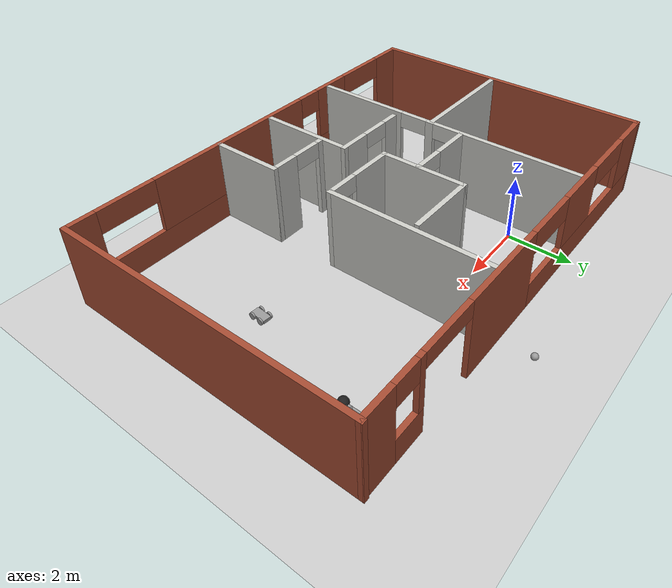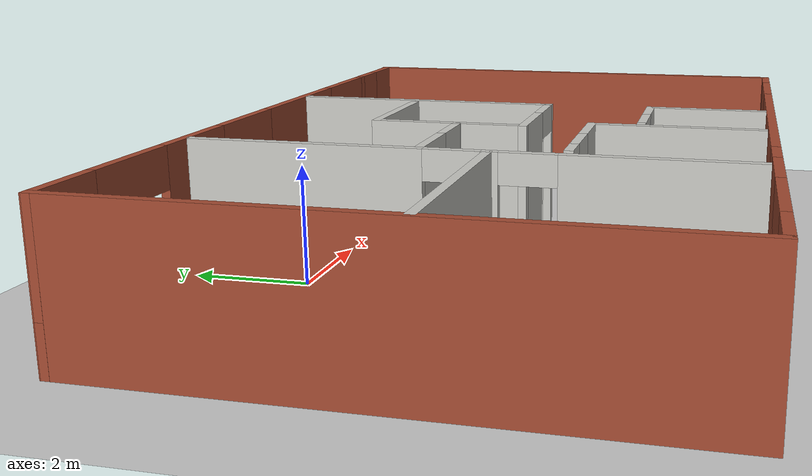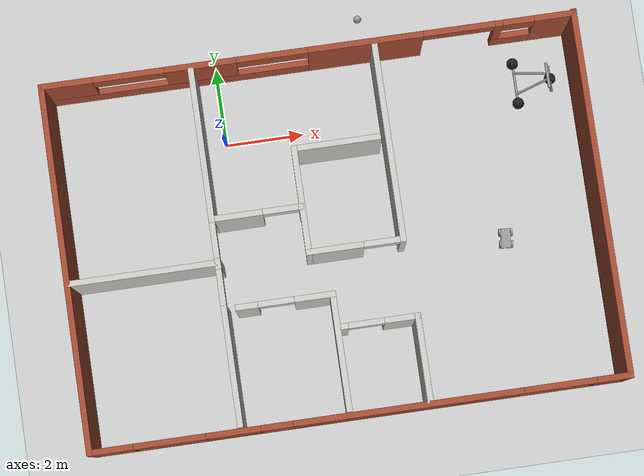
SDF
<sdf version="1.6">
 <world name="default">
  <model name="ground_plane">
   <static>1</static>
   <link name="link">
    <collision name="collision">
     <geometry><plane><normal>0 0 1</normal><size>100 100</size></plane></geometry>
     <surface><friction><ode><mu>100</mu><mu2>50</mu2></ode></friction></surface>
    </collision>
    <visual name="visual">
     <cast_shadows>0</cast_shadows>
     <geometry><plane><normal>0 0 1</normal><size>100 100</size></plane></geometry>
     <material>
      <script><uri>file://media/materials/scripts/gazebo.material</uri><name>Gazebo/Grey</name></script>
     </material>
    </visual>
   </link>
  </model>
  <model name="myhouse">
   <pose>2.39208 -2.83258 0 0 -0 0</pose>
   <link name="Wall_38">
    <collision name="Wall_38_Collision">
     <geometry><box><size>9.28418 0.15 2.5</size></box></geometry>
     <pose>0 0 1.25 0 -0 0</pose>
    </collision>
    <visual name="Wall_38_Visual">
     <pose>0 0 1.25 0 -0 0</pose>
     <geometry><box><size>9.28418 0.15 2.5</size></box></geometry>
     <material>
      <script><uri>file://media/materials/scripts/gazebo.material</uri><name>Gazebo/Bricks</name></script>
      <ambient>0.996078 0.47451 0.0196078 1</ambient>
     </material>
    </visual>
    <pose>-6.69036 -4.9e-05 0 0 0 -1.5708</pose>
   </link>
   <link name="Wall_39">
    <pose>0.000136 -4.56705 0 0 -0 0</pose>
    <visual name="Wall_39_Visual_0">
     <pose>-6.18995 0 1.25 0 -0 0</pose>
     <geometry><box><size>1.1511 0.15 2.5</size></box></geometry>
     <material>
      <script><uri>file://media/materials/scripts/gazebo.material</uri><name>Gazebo/Bricks</name></script>
      <ambient>0.996078 0.47451 0.0196078 1</ambient>
     </material>
    </visual>
    <collision name="Wall_39_Collision_0">
     <geometry><box><size>1.1511 0.15 2.5</size></box></geometry>
     <pose>-6.18995 0 1.25 0 -0 0</pose>
    </collision>
    <visual name="Wall_39_Visual_1">
     <pose>0.575549 0 0.4 0 -0 0</pose>
     <geometry><box><size>12.3799 0.15 0.8</size></box></geometry>
     <material>
      <script><uri>file://media/materials/scripts/gazebo.material</uri><name>Gazebo/Bricks</name></script>
      <ambient>0.996078 0.47451 0.0196078 1</ambient>
     </material>
    </visual>
    <collision name="Wall_39_Collision_1">
     <geometry><box><size>12.3799 0.15 0.8</size></box></geometry>
     <pose>0.575549 0 0.4 0 -0 0</pose>
    </collision>
    <visual name="Wall_39_Visual_2">
     <pose>-3.14182 0 1.65 0 -0 0</pose>
     <geometry><box><size>1.34517 0.15 1.7</size></box></geometry>
     <material>
      <script><uri>file://media/materials/scripts/gazebo.material</uri><name>Gazebo/Bricks</name></script>
      <ambient>0.996078 0.47451 0.0196078 1</ambient>
     </material>
    </visual>
    <collision name="Wall_39_Collision_2">
     <geometry><box><size>1.34517 0.15 1.7</size></box></geometry>
     <pose>-3.14182 0 1.65 0 -0 0</pose>
    </collision>
    <visual name="Wall_39_Visual_3">
     <pose>1.19211 0 1.65 0 -0 0</pose>
     <geometry><box><size>5.72269 0.15 1.7</size></box></geometry>
     <material>
      <script><uri>file://media/materials/scripts/gazebo.material</uri><name>Gazebo/Bricks</name></script>
      <ambient>0.996078 0.47451 0.0196078 1</ambient>
     </material>
    </visual>
    <collision name="Wall_39_Collision_3">
     <geometry><box><size>5.72269 0.15 1.7</size></box></geometry>
     <pose>1.19211 0 1.65 0 -0 0</pose>
    </collision>
    <visual name="Wall_39_Visual_4">
     <pose>6.30948 0 1.65 0 -0 0</pose>
     <geometry><box><size>0.912041 0.15 1.7</size></box></geometry>
     <material>
      <script><uri>file://media/materials/scripts/gazebo.material</uri><name>Gazebo/Bricks</name></script>
      <ambient>0.996078 0.47451 0.0196078 1</ambient>
     </material>
    </visual>
    <collision name="Wall_39_Collision_4">
     <geometry><box><size>0.912041 0.15 1.7</size></box></geometry>
     <pose>6.30948 0 1.65 0 -0 0</pose>
    </collision>
    <visual name="Wall_39_Visual_5">
     <pose>-4.7144 0 2.15 0 -0 0</pose>
     <geometry><box><size>1.8 0.15 0.7</size></box></geometry>
     <material>
      <script><uri>file://media/materials/scripts/gazebo.material</uri><name>Gazebo/Bricks</name></script>
      <ambient>0.996078 0.47451 0.0196078 1</ambient>
     </material>
    </visual>
    <collision name="Wall_39_Collision_5">
     <geometry><box><size>1.8 0.15 0.7</size></box></geometry>
     <pose>-4.7144 0 2.15 0 -0 0</pose>
    </collision>
    <visual name="Wall_39_Visual_6">
     <pose>-2.06923 0 2.15 0 -0 0</pose>
     <geometry><box><size>0.8 0.15 0.7</size></box></geometry>
     <material>
      <script><uri>file://media/materials/scripts/gazebo.material</uri><name>Gazebo/Bricks</name></script>
      <ambient>0.996078 0.47451 0.0196078 1</ambient>
     </material>
    </visual>
    <collision name="Wall_39_Collision_6">
     <geometry><box><size>0.8 0.15 0.7</size></box></geometry>
     <pose>-2.06923 0 2.15 0 -0 0</pose>
    </collision>
    <visual name="Wall_39_Visual_7">
     <pose>4.95346 0 2.15 0 -0 0</pose>
     <geometry><box><size>1.8 0.15 0.7</size></box></geometry>
     <material>
      <script><uri>file://media/materials/scripts/gazebo.material</uri><name>Gazebo/Bricks</name></script>
      <ambient>0.996078 0.47451 0.0196078 1</ambient>
     </material>
    </visual>
    <collision name="Wall_39_Collision_7">
     <geometry><box><size>1.8 0.15 0.7</size></box></geometry>
     <pose>4.95346 0 2.15 0 -0 0</pose>
    </collision>
   </link>
   <link name="Wall_40">
    <collision name="Wall_40_Collision">
     <geometry><box><size>9.28418 0.15 2.5</size></box></geometry>
     <pose>0 0 1.25 0 -0 0</pose>
    </collision>
    <visual name="Wall_40_Visual">
     <pose>0 0 1.25 0 -0 0</pose>
     <geometry><box><size>9.28418 0.15 2.5</size></box></geometry>
     <material>
      <script><uri>file://media/materials/scripts/gazebo.material</uri><name>Gazebo/Bricks</name></script>
      <ambient>0.996078 0.47451 0.0196078 1</ambient>
     </material>
    </visual>
    <pose>6.69014 4.1e-05 0 0 -0 1.57091</pose>
   </link>
   <link name="Wall_41">
    <pose>-0.000364 4.55175 0 0 -0 3.13932</pose>
    <visual name="Wall_41_Visual_0">
     <pose>-6.23299 0 1.25 0 -0 0</pose>
     <geometry><box><size>1.06429 0.15 2.5</size></box></geometry>
     <material>
      <script><uri>file://media/materials/scripts/gazebo.material</uri><name>Gazebo/Bricks</name></script>
      <ambient>0.996078 0.47451 0.0196078 1</ambient>
     </material>
    </visual>
    <collision name="Wall_41_Collision_0">
     <geometry><box><size>1.06429 0.15 2.5</size></box></geometry>
     <pose>-6.23299 0 1.25 0 -0 0</pose>
    </collision>
    <visual name="Wall_41_Visual_1">
     <pose>-1.44735 0 1.25 0 -0 0</pose>
     <geometry><box><size>2.90668 0.15 2.5</size></box></geometry>
     <material>
      <script><uri>file://media/materials/scripts/gazebo.material</uri><name>Gazebo/Bricks</name></script>
      <ambient>0.996078 0.47451 0.0196078 1</ambient>
     </material>
    </visual>
    <collision name="Wall_41_Collision_1">
     <geometry><box><size>2.90668 0.15 2.5</size></box></geometry>
     <pose>-1.44735 0 1.25 0 -0 0</pose>
    </collision>
    <visual name="Wall_41_Visual_2">
     <pose>-5.20076 0 0.4 0 -0 0</pose>
     <geometry><box><size>1.00016 0.15 0.8</size></box></geometry>
     <material>
      <script><uri>file://media/materials/scripts/gazebo.material</uri><name>Gazebo/Bricks</name></script>
      <ambient>0.996078 0.47451 0.0196078 1</ambient>
     </material>
    </visual>
    <collision name="Wall_41_Collision_2">
     <geometry><box><size>1.00016 0.15 0.8</size></box></geometry>
     <pose>-5.20076 0 0.4 0 -0 0</pose>
    </collision>
    <visual name="Wall_41_Visual_3">
     <pose>3.38556 0 0.4 0 -0 0</pose>
     <geometry><box><size>6.75914 0.15 0.8</size></box></geometry>
     <material>
      <script><uri>file://media/materials/scripts/gazebo.material</uri><name>Gazebo/Bricks</name></script>
      <ambient>0.996078 0.47451 0.0196078 1</ambient>
     </material>
    </visual>
    <collision name="Wall_41_Collision_3">
     <geometry><box><size>6.75914 0.15 0.8</size></box></geometry>
     <pose>3.38556 0 0.4 0 -0 0</pose>
    </collision>
    <visual name="Wall_41_Visual_4">
     <pose>-4.80076 0 1.65 0 -0 0</pose>
     <geometry><box><size>0.200157 0.15 1.7</size></box></geometry>
     <material>
      <script><uri>file://media/materials/scripts/gazebo.material</uri><name>Gazebo/Bricks</name></script>
      <ambient>0.996078 0.47451 0.0196078 1</ambient>
     </material>
    </visual>
    <collision name="Wall_41_Collision_4">
     <geometry><box><size>0.200157 0.15 1.7</size></box></geometry>
     <pose>-4.80076 0 1.65 0 -0 0</pose>
    </collision>
    <visual name="Wall_41_Visual_5">
     <pose>-4.80076 0 1.65 0 -0 0</pose>
     <geometry><box><size>0.200157 0.15 1.7</size></box></geometry>
     <material>
      <script><uri>file://media/materials/scripts/gazebo.material</uri><name>Gazebo/Bricks</name></script>
      <ambient>0.996078 0.47451 0.0196078 1</ambient>
     </material>
    </visual>
    <collision name="Wall_41_Collision_5">
     <geometry><box><size>0.200157 0.15 1.7</size></box></geometry>
     <pose>-4.80076 0 1.65 0 -0 0</pose>
    </collision>
    <visual name="Wall_41_Visual_6">
     <pose>2.70554 0 1.65 0 -0 0</pose>
     <geometry><box><size>1.79911 0.15 1.7</size></box></geometry>
     <material>
      <script><uri>file://media/materials/scripts/gazebo.material</uri><name>Gazebo/Bricks</name></script>
      <ambient>0.996078 0.47451 0.0196078 1</ambient>
     </material>
    </visual>
    <collision name="Wall_41_Collision_6">
     <geometry><box><size>1.79911 0.15 1.7</size></box></geometry>
     <pose>2.70554 0 1.65 0 -0 0</pose>
    </collision>
    <visual name="Wall_41_Visual_7">
     <pose>6.08511 0 1.65 0 -0 0</pose>
     <geometry><box><size>1.36003 0.15 1.7</size></box></geometry>
     <material>
      <script><uri>file://media/materials/scripts/gazebo.material</uri><name>Gazebo/Bricks</name></script>
      <ambient>0.996078 0.47451 0.0196078 1</ambient>
     </material>
    </visual>
    <collision name="Wall_41_Collision_7">
     <geometry><box><size>1.36003 0.15 1.7</size></box></geometry>
     <pose>6.08511 0 1.65 0 -0 0</pose>
    </collision>
    <visual name="Wall_41_Visual_8">
     <pose>-5.30084 0 2.15 0 -0 0</pose>
     <geometry><box><size>0.8 0.15 0.7</size></box></geometry>
     <material>
      <script><uri>file://media/materials/scripts/gazebo.material</uri><name>Gazebo/Bricks</name></script>
      <ambient>0.996078 0.47451 0.0196078 1</ambient>
     </material>
    </visual>
    <collision name="Wall_41_Collision_8">
     <geometry><box><size>0.8 0.15 0.7</size></box></geometry>
     <pose>-5.30084 0 2.15 0 -0 0</pose>
    </collision>
    <visual name="Wall_41_Visual_9">
     <pose>0.905991 0 2.15 0 -0 0</pose>
     <geometry><box><size>1.8 0.15 0.7</size></box></geometry>
     <material>
      <script><uri>file://media/materials/scripts/gazebo.material</uri><name>Gazebo/Bricks</name></script>
      <ambient>0.996078 0.47451 0.0196078 1</ambient>
     </material>
    </visual>
    <collision name="Wall_41_Collision_9">
     <geometry><box><size>1.8 0.15 0.7</size></box></geometry>
     <pose>0.905991 0 2.15 0 -0 0</pose>
    </collision>
    <visual name="Wall_41_Visual_10">
     <pose>4.5051 0 2.15 0 -0 0</pose>
     <geometry><box><size>1.8 0.15 0.7</size></box></geometry>
     <material>
      <script><uri>file://media/materials/scripts/gazebo.material</uri><name>Gazebo/Bricks</name></script>
      <ambient>0.996078 0.47451 0.0196078 1</ambient>
     </material>
    </visual>
    <collision name="Wall_41_Collision_10">
     <geometry><box><size>1.8 0.15 0.7</size></box></geometry>
     <pose>4.5051 0 2.15 0 -0 0</pose>
    </collision>
    <visual name="Wall_41_Visual_11">
     <pose>-3.80068 0 2.25 0 -0 0</pose>
     <geometry><box><size>1.8 0.15 0.5</size></box></geometry>
     <material>
      <script><uri>file://media/materials/scripts/gazebo.material</uri><name>Gazebo/Bricks</name></script>
      <ambient>0.996078 0.47451 0.0196078 1</ambient>
     </material>
    </visual>
    <collision name="Wall_41_Collision_11">
     <geometry><box><size>1.8 0.15 0.5</size></box></geometry>
     <pose>-3.80068 0 2.25 0 -0 0</pose>
    </collision>
    <visual name="Wall_41_Visual_12">
     <pose>-3.80068 0 2.25 0 -0 0</pose>
     <geometry><box><size>1.8 0.15 0.5</size></box></geometry>
     <material>
      <script><uri>file://media/materials/scripts/gazebo.material</uri><name>Gazebo/Bricks</name></script>
      <ambient>0.996078 0.47451 0.0196078 1</ambient>
     </material>
    </visual>
    <collision name="Wall_41_Collision_12">
     <geometry><box><size>1.8 0.15 0.5</size></box></geometry>
     <pose>-3.80068 0 2.25 0 -0 0</pose>
    </collision>
   </link>
   <link name="Wall_43">
    <pose>-2.95236 0.022951 0 0 0 -1.5708</pose>
    <visual name="Wall_43_Visual_0">
     <pose>-2.54618 0 1.25 0 -0 0</pose>
     <geometry><box><size>3.90763 0.15 2.5</size></box></geometry>
     <material>
      <script><uri>file://media/materials/scripts/gazebo.material</uri><name>Gazebo/CeilingTiled</name></script>
      <ambient>0.760784 0.662745 0.627451 1</ambient>
     </material>
    </visual>
    <collision name="Wall_43_Collision_0">
     <geometry><box><size>3.90763 0.15 2.5</size></box></geometry>
     <pose>-2.54618 0 1.25 0 -0 0</pose>
    </collision>
    <visual name="Wall_43_Visual_1">
     <pose>0.442836 0 1.25 0 -0 0</pose>
     <geometry><box><size>0.270409 0.15 2.5</size></box></geometry>
     <material>
      <script><uri>file://media/materials/scripts/gazebo.material</uri><name>Gazebo/CeilingTiled</name></script>
      <ambient>0.760784 0.662745 0.627451 1</ambient>
     </material>
    </visual>
    <collision name="Wall_43_Collision_1">
     <geometry><box><size>0.270409 0.15 2.5</size></box></geometry>
     <pose>0.442836 0 1.25 0 -0 0</pose>
    </collision>
    <visual name="Wall_43_Visual_2">
     <pose>2.98902 0 1.25 0 -0 0</pose>
     <geometry><box><size>3.02196 0.15 2.5</size></box></geometry>
     <material>
      <script><uri>file://media/materials/scripts/gazebo.material</uri><name>Gazebo/CeilingTiled</name></script>
      <ambient>0.760784 0.662745 0.627451 1</ambient>
     </material>
    </visual>
    <collision name="Wall_43_Collision_2">
     <geometry><box><size>3.02196 0.15 2.5</size></box></geometry>
     <pose>2.98902 0 1.25 0 -0 0</pose>
    </collision>
    <visual name="Wall_43_Visual_3">
     <pose>-0.142368 0 2.25 0 -0 0</pose>
     <geometry><box><size>0.9 0.15 0.5</size></box></geometry>
     <material>
      <script><uri>file://media/materials/scripts/gazebo.material</uri><name>Gazebo/CeilingTiled</name></script>
      <ambient>0.760784 0.662745 0.627451 1</ambient>
     </material>
    </visual>
    <collision name="Wall_43_Collision_3">
     <geometry><box><size>0.9 0.15 0.5</size></box></geometry>
     <pose>-0.142368 0 2.25 0 -0 0</pose>
    </collision>
    <visual name="Wall_43_Visual_4">
     <pose>1.02804 0 2.25 0 -0 0</pose>
     <geometry><box><size>0.9 0.15 0.5</size></box></geometry>
     <material>
      <script><uri>file://media/materials/scripts/gazebo.material</uri><name>Gazebo/CeilingTiled</name></script>
      <ambient>0.760784 0.662745 0.627451 1</ambient>
     </material>
    </visual>
    <collision name="Wall_43_Collision_4">
     <geometry><box><size>0.9 0.15 0.5</size></box></geometry>
     <pose>1.02804 0 2.25 0 -0 0</pose>
    </collision>
   </link>
   <link name="Wall_45">
    <collision name="Wall_45_Collision">
     <geometry><box><size>3.75 0.15 2.5</size></box></geometry>
     <pose>0 0 1.25 0 -0 0</pose>
    </collision>
    <visual name="Wall_45_Visual">
     <pose>0 0 1.25 0 -0 0</pose>
     <geometry><box><size>3.75 0.15 2.5</size></box></geometry>
     <material>
      <script><uri>file://media/materials/scripts/gazebo.material</uri><name>Gazebo/CeilingTiled</name></script>
      <ambient>0.760784 0.662745 0.627451 1</ambient>
     </material>
    </visual>
    <pose>-4.83736 -0.389049 0 0 -0 0</pose>
   </link>
   <link name="Wall_47">
    <pose>-1.77981 0.698376 0 0 -0 0</pose>
    <visual name="Wall_47_Visual_0">
     <pose>-0.514494 0 1.25 0 -0 0</pose>
     <geometry><box><size>1.22101 0.15 2.5</size></box></geometry>
     <material>
      <script><uri>file://media/materials/scripts/gazebo.material</uri><name>Gazebo/CeilingTiled</name></script>
      <ambient>0.760784 0.662745 0.627451 1</ambient>
     </material>
    </visual>
    <collision name="Wall_47_Collision_0">
     <geometry><box><size>1.22101 0.15 2.5</size></box></geometry>
     <pose>-0.514494 0 1.25 0 -0 0</pose>
    </collision>
    <visual name="Wall_47_Visual_1">
     <pose>1.06051 0 1.25 0 -0 0</pose>
     <geometry><box><size>0.128988 0.15 2.5</size></box></geometry>
     <material>
      <script><uri>file://media/materials/scripts/gazebo.material</uri><name>Gazebo/CeilingTiled</name></script>
      <ambient>0.760784 0.662745 0.627451 1</ambient>
     </material>
    </visual>
    <collision name="Wall_47_Collision_1">
     <geometry><box><size>0.128988 0.15 2.5</size></box></geometry>
     <pose>1.06051 0 1.25 0 -0 0</pose>
    </collision>
    <visual name="Wall_47_Visual_2">
     <pose>0.546012 0 2.25 0 -0 0</pose>
     <geometry><box><size>0.9 0.15 0.5</size></box></geometry>
     <material>
      <script><uri>file://media/materials/scripts/gazebo.material</uri><name>Gazebo/CeilingTiled</name></script>
      <ambient>0.760784 0.662745 0.627451 1</ambient>
     </material>
    </visual>
    <collision name="Wall_47_Collision_2">
     <geometry><box><size>0.9 0.15 0.5</size></box></geometry>
     <pose>0.546012 0 2.25 0 -0 0</pose>
    </collision>
   </link>
   <link name="Wall_49">
    <collision name="Wall_49_Collision">
     <geometry><box><size>5 0.15 2.5</size></box></geometry>
     <pose>0 0 1.25 0 -0 0</pose>
    </collision>
    <visual name="Wall_49_Visual">
     <pose>0 0 1.25 0 -0 0</pose>
     <geometry><box><size>5 0.15 2.5</size></box></geometry>
     <material>
      <script><uri>file://media/materials/scripts/gazebo.material</uri><name>Gazebo/CeilingTiled</name></script>
      <ambient>0.760784 0.662745 0.627451 1</ambient>
     </material>
    </visual>
    <pose>1.66164 1.97395 0 0 0 -1.5708</pose>
   </link>
   <link name="Wall_50">
    <pose>0.486636 -0.451049 0 0 -0 3.14159</pose>
    <visual name="Wall_50_Visual_0">
     <pose>-1.17305 0 1.25 0 -0 0</pose>
     <geometry><box><size>0.153899 0.15 2.5</size></box></geometry>
     <material>
      <script><uri>file://media/materials/scripts/gazebo.material</uri><name>Gazebo/CeilingTiled</name></script>
      <ambient>0.760784 0.662745 0.627451 1</ambient>
     </material>
    </visual>
    <collision name="Wall_50_Collision_0">
     <geometry><box><size>0.153899 0.15 2.5</size></box></geometry>
     <pose>-1.17305 0 1.25 0 -0 0</pose>
    </collision>
    <visual name="Wall_50_Visual_1">
     <pose>0.526949 0 1.25 0 -0 0</pose>
     <geometry><box><size>1.4461 0.15 2.5</size></box></geometry>
     <material>
      <script><uri>file://media/materials/scripts/gazebo.material</uri><name>Gazebo/CeilingTiled</name></script>
      <ambient>0.760784 0.662745 0.627451 1</ambient>
     </material>
    </visual>
    <collision name="Wall_50_Collision_1">
     <geometry><box><size>1.4461 0.15 2.5</size></box></geometry>
     <pose>0.526949 0 1.25 0 -0 0</pose>
    </collision>
    <visual name="Wall_50_Visual_2">
     <pose>-0.646101 0 2.25 0 -0 0</pose>
     <geometry><box><size>0.9 0.15 0.5</size></box></geometry>
     <material>
      <script><uri>file://media/materials/scripts/gazebo.material</uri><name>Gazebo/CeilingTiled</name></script>
      <ambient>0.760784 0.662745 0.627451 1</ambient>
     </material>
    </visual>
    <collision name="Wall_50_Collision_2">
     <geometry><box><size>0.9 0.15 0.5</size></box></geometry>
     <pose>-0.646101 0 2.25 0 -0 0</pose>
    </collision>
   </link>
   <link name="Wall_51">
    <collision name="Wall_51_Collision">
     <geometry><box><size>2.75 0.15 2.5</size></box></geometry>
     <pose>0 0 1.25 0 -0 0</pose>
    </collision>
    <visual name="Wall_51_Visual">
     <pose>0 0 1.25 0 -0 0</pose>
     <geometry><box><size>2.75 0.15 2.5</size></box></geometry>
     <material>
      <script><uri>file://media/materials/scripts/gazebo.material</uri><name>Gazebo/CeilingTiled</name></script>
      <ambient>0.760784 0.662745 0.627451 1</ambient>
     </material>
    </visual>
    <pose>-0.688364 0.848951 0 0 -0 1.5708</pose>
   </link>
   <link name="Wall_52">
    <collision name="Wall_52_Collision">
     <geometry><box><size>2.25 0.15 2.5</size></box></geometry>
     <pose>0 0 1.25 0 -0 0</pose>
    </collision>
    <visual name="Wall_52_Visual">
     <pose>0 0 1.25 0 -0 0</pose>
     <geometry><box><size>2.25 0.15 2.5</size></box></geometry>
     <material>
      <script><uri>file://media/materials/scripts/gazebo.material</uri><name>Gazebo/CeilingTiled</name></script>
      <ambient>0.760784 0.662745 0.627451 1</ambient>
     </material>
    </visual>
    <pose>0.361636 2.14895 0 0 -0 0</pose>
   </link>
   <link name="Wall_54">
    <collision name="Wall_54_Collision">
     <geometry><box><size>2.25 0.15 2.5</size></box></geometry>
     <pose>0 0 1.25 0 -0 0</pose>
    </collision>
    <visual name="Wall_54_Visual">
     <pose>0 0 1.25 0 -0 0</pose>
     <geometry><box><size>2.25 0.15 2.5</size></box></geometry>
     <material>
      <script><uri>file://media/materials/scripts/gazebo.material</uri><name>Gazebo/CeilingTiled</name></script>
      <ambient>0.760784 0.662745 0.627451 1</ambient>
     </material>
    </visual>
    <pose>1.74164 -3.43505 0 0 -0 1.5708</pose>
   </link>
   <link name="Wall_55">
    <pose>0.816636 -2.38505 0 0 -0 3.14159</pose>
    <visual name="Wall_55_Visual_0">
     <pose>-0.547756 0 1.25 0 -0 0</pose>
     <geometry><box><size>0.904487 0.15 2.5</size></box></geometry>
     <material>
      <script><uri>file://media/materials/scripts/gazebo.material</uri><name>Gazebo/CeilingTiled</name></script>
      <ambient>0.760784 0.662745 0.627451 1</ambient>
     </material>
    </visual>
    <collision name="Wall_55_Collision_0">
     <geometry><box><size>0.904487 0.15 2.5</size></box></geometry>
     <pose>-0.547756 0 1.25 0 -0 0</pose>
    </collision>
    <visual name="Wall_55_Visual_1">
     <pose>0.902244 0 1.25 0 -0 0</pose>
     <geometry><box><size>0.195513 0.15 2.5</size></box></geometry>
     <material>
      <script><uri>file://media/materials/scripts/gazebo.material</uri><name>Gazebo/CeilingTiled</name></script>
      <ambient>0.760784 0.662745 0.627451 1</ambient>
     </material>
    </visual>
    <collision name="Wall_55_Collision_1">
     <geometry><box><size>0.195513 0.15 2.5</size></box></geometry>
     <pose>0.902244 0 1.25 0 -0 0</pose>
    </collision>
    <visual name="Wall_55_Visual_2">
     <pose>0.354487 0 2.25 0 -0 0</pose>
     <geometry><box><size>0.9 0.15 0.5</size></box></geometry>
     <material>
      <script><uri>file://media/materials/scripts/gazebo.material</uri><name>Gazebo/CeilingTiled</name></script>
      <ambient>0.760784 0.662745 0.627451 1</ambient>
     </material>
    </visual>
    <collision name="Wall_55_Collision_2">
     <geometry><box><size>0.9 0.15 0.5</size></box></geometry>
     <pose>0.354487 0 2.25 0 -0 0</pose>
    </collision>
   </link>
   <link name="Wall_57">
    <collision name="Wall_57_Collision">
     <geometry><box><size>3 0.15 2.5</size></box></geometry>
     <pose>0 0 1.25 0 -0 0</pose>
    </collision>
    <visual name="Wall_57_Visual">
     <pose>0 0 1.25 0 -0 0</pose>
     <geometry><box><size>3 0.15 2.5</size></box></geometry>
     <material>
      <script><uri>file://media/materials/scripts/gazebo.material</uri><name>Gazebo/CeilingTiled</name></script>
      <ambient>0.760784 0.662745 0.627451 1</ambient>
     </material>
    </visual>
    <pose>-0.253364 -2.98005 0 0 -0 1.5708</pose>
   </link>
   <link name="Wall_58">
    <pose>-1.42836 -1.55505 0 0 -0 3.14159</pose>
    <visual name="Wall_58_Visual_0">
     <pose>-0.732595 0 1.25 0 -0 0</pose>
     <geometry><box><size>1.03481 0.15 2.5</size></box></geometry>
     <material>
      <script><uri>file://media/materials/scripts/gazebo.material</uri><name>Gazebo/CeilingTiled</name></script>
      <ambient>0.760784 0.662745 0.627451 1</ambient>
     </material>
    </visual>
    <collision name="Wall_58_Collision_0">
     <geometry><box><size>1.03481 0.15 2.5</size></box></geometry>
     <pose>-0.732595 0 1.25 0 -0 0</pose>
    </collision>
    <visual name="Wall_58_Visual_1">
     <pose>0.967405 0 1.25 0 -0 0</pose>
     <geometry><box><size>0.565189 0.15 2.5</size></box></geometry>
     <material>
      <script><uri>file://media/materials/scripts/gazebo.material</uri><name>Gazebo/CeilingTiled</name></script>
      <ambient>0.760784 0.662745 0.627451 1</ambient>
     </material>
    </visual>
    <collision name="Wall_58_Collision_1">
     <geometry><box><size>0.565189 0.15 2.5</size></box></geometry>
     <pose>0.967405 0 1.25 0 -0 0</pose>
    </collision>
    <visual name="Wall_58_Visual_2">
     <pose>0.234811 0 2.25 0 -0 0</pose>
     <geometry><box><size>0.9 0.15 0.5</size></box></geometry>
     <material>
      <script><uri>file://media/materials/scripts/gazebo.material</uri><name>Gazebo/CeilingTiled</name></script>
      <ambient>0.760784 0.662745 0.627451 1</ambient>
     </material>
    </visual>
    <collision name="Wall_58_Collision_2">
     <geometry><box><size>0.9 0.15 0.5</size></box></geometry>
     <pose>0.234811 0 2.25 0 -0 0</pose>
    </collision>
   </link>
   <static>1</static>
  </model>
  <model name="Car">
   <link name="link_0">
    <inertial>
     <mass>1</mass>
     <inertia>
      <ixx>0.166667</ixx>
      <ixy>0</ixy>
      <ixz>0</ixz>
      <iyy>0.166667</iyy>
      <iyz>0</iyz>
      <izz>0.166667</izz>
     </inertia>
    </inertial>
    <visual name="visual">
     <geometry><box><size>0.25 0.5 0.1</size></box></geometry>
     <material>
      <lighting>1</lighting>
      <script><uri>file://media/materials/scripts/gazebo.material</uri><name>Gazebo/Grey</name></script>
      <ambient>0.3 0.3 0.3 1</ambient>
      <diffuse>0.7 0.7 0.7 1</diffuse>
      <specular>0.01 0.01 0.01 1</specular>
      <emissive>0 0 0 1</emissive>
      <shader type="vertex"><normal_map>__default__</normal_map></shader>
     </material>
    </visual>
    <collision name="collision">
     <geometry><box><size>0.25 0.5 0.1</size></box></geometry>
     <surface>
      <friction>
       <ode><mu>1</mu><mu2>1</mu2><fdir1>0 0 0</fdir1><slip1>0</slip1><slip2>0</slip2></ode>
       <torsional>
        <coefficient>1</coefficient>
        <patch_radius>0</patch_radius>
        <surface_radius>0</surface_radius>
        <use_patch_radius>1</use_patch_radius>
        <ode><slip>0</slip></ode>
       </torsional>
      </friction>
      <bounce><restitution_coefficient>0</restitution_coefficient><threshold>1e+06</threshold></bounce>
      <contact>
       <collide_without_contact>0</collide_without_contact>
       <collide_without_contact_bitmask>1</collide_without_contact_bitmask>
       <collide_bitmask>1</collide_bitmask>
       <ode>
        <soft_cfm>0</soft_cfm>
        <soft_erp>0.2</soft_erp>
        <kp>1e+13</kp>
        <kd>1</kd>
        <max_vel>0.01</max_vel>
        <min_depth>0</min_depth>
       </ode>
       <bullet>
        <split_impulse>1</split_impulse>
        <split_impulse_penetration_threshold>-0.01</split_impulse_penetration_threshold>
        <soft_cfm>0</soft_cfm>
        <soft_erp>0.2</soft_erp>
        <kp>1e+13</kp>
        <kd>1</kd>
       </bullet>
      </contact>
     </surface>
    </collision>
   </link>
   <link name="link_1">
    <pose>-0.15001 0.15 0 0 1.5707 0</pose>
    <inertial>
     <mass>1</mass>
     <inertia><ixx>0.145833</ixx><ixy>0</ixy><ixz>0</ixz><iyy>0.145833</iyy><iyz>0</iyz><izz>0.125</izz></inertia>
    </inertial>
    <visual name="visual">
     <geometry><cylinder><radius>0.1</radius><length>0.05</length></cylinder></geometry>
     <material>
      <lighting>1</lighting>
      <script><uri>file://media/materials/scripts/gazebo.material</uri><name>Gazebo/Grey</name></script>
      <ambient>0.3 0.3 0.3 1</ambient>
      <diffuse>0.7 0.7 0.7 1</diffuse>
      <specular>0.01 0.01 0.01 1</specular>
      <emissive>0 0 0 1</emissive>
      <shader type="vertex"><normal_map>__default__</normal_map></shader>
     </material>
    </visual>
    <collision name="collision">
     <geometry><cylinder><radius>0.1</radius><length>0.05</length></cylinder></geometry>
     <surface>
      <friction>
       <ode><mu>1</mu><mu2>1</mu2><fdir1>0 0 0</fdir1><slip1>0</slip1><slip2>0</slip2></ode>
       <torsional>
        <coefficient>1</coefficient>
        <patch_radius>0</patch_radius>
        <surface_radius>0</surface_radius>
        <use_patch_radius>1</use_patch_radius>
        <ode><slip>0</slip></ode>
       </torsional>
      </friction>
      <bounce><restitution_coefficient>0</restitution_coefficient><threshold>1e+06</threshold></bounce>
      <contact>
       <collide_without_contact>0</collide_without_contact>
       <collide_without_contact_bitmask>1</collide_without_contact_bitmask>
       <collide_bitmask>1</collide_bitmask>
       <ode>
        <soft_cfm>0</soft_cfm>
        <soft_erp>0.2</soft_erp>
        <kp>1e+13</kp>
        <kd>1</kd>
        <max_vel>0.01</max_vel>
        <min_depth>0</min_depth>
       </ode>
       <bullet>
        <split_impulse>1</split_impulse>
        <split_impulse_penetration_threshold>-0.01</split_impulse_penetration_threshold>
        <soft_cfm>0</soft_cfm>
        <soft_erp>0.2</soft_erp>
        <kp>1e+13</kp>
        <kd>1</kd>
       </bullet>
      </contact>
     </surface>
    </collision>
   </link>
   <link name="link_1_clone">
    <pose>0.15001 -0.15 0 0 1.5707 0</pose>
    <inertial>
     <mass>1</mass>
     <inertia><ixx>0.145833</ixx><ixy>0</ixy><ixz>0</ixz><iyy>0.145833</iyy><iyz>0</iyz><izz>0.125</izz></inertia>
    </inertial>
    <visual name="visual">
     <geometry><cylinder><radius>0.1</radius><length>0.05</length></cylinder></geometry>
     <material>
      <lighting>1</lighting>
      <script><uri>file://media/materials/scripts/gazebo.material</uri><name>Gazebo/Grey</name></script>
      <ambient>0.3 0.3 0.3 1</ambient>
      <diffuse>0.7 0.7 0.7 1</diffuse>
      <specular>0.01 0.01 0.01 1</specular>
      <emissive>0 0 0 1</emissive>
      <shader type="vertex"><normal_map>__default__</normal_map></shader>
     </material>
    </visual>
    <collision name="collision">
     <geometry><cylinder><radius>0.1</radius><length>0.05</length></cylinder></geometry>
     <surface>
      <friction>
       <ode><mu>1</mu><mu2>1</mu2><fdir1>0 0 0</fdir1><slip1>0</slip1><slip2>0</slip2></ode>
       <torsional>
        <coefficient>1</coefficient>
        <patch_radius>0</patch_radius>
        <surface_radius>0</surface_radius>
        <use_patch_radius>1</use_patch_radius>
        <ode><slip>0</slip></ode>
       </torsional>
      </friction>
      <bounce><restitution_coefficient>0</restitution_coefficient><threshold>1e+06</threshold></bounce>
      <contact>
       <collide_without_contact>0</collide_without_contact>
       <collide_without_contact_bitmask>1</collide_without_contact_bitmask>
       <collide_bitmask>1</collide_bitmask>
       <ode>
        <soft_cfm>0</soft_cfm>
        <soft_erp>0.2</soft_erp>
        <kp>1e+13</kp>
        <kd>1</kd>
        <max_vel>0.01</max_vel>
        <min_depth>0</min_depth>
       </ode>
       <bullet>
        <split_impulse>1</split_impulse>
        <split_impulse_penetration_threshold>-0.01</split_impulse_penetration_threshold>
        <soft_cfm>0</soft_cfm>
        <soft_erp>0.2</soft_erp>
        <kp>1e+13</kp>
        <kd>1</kd>
       </bullet>
      </contact>
     </surface>
    </collision>
   </link>
   <link name="link_1_clone_0">
    <pose>-0.15001 -0.15 0 0 1.5707 0</pose>
    <inertial>
     <mass>1</mass>
     <inertia><ixx>0.145833</ixx><ixy>0</ixy><ixz>0</ixz><iyy>0.145833</iyy><iyz>0</iyz><izz>0.125</izz></inertia>
    </inertial>
    <visual name="visual">
     <geometry><cylinder><radius>0.1</radius><length>0.05</length></cylinder></geometry>
     <material>
      <lighting>1</lighting>
      <script><uri>file://media/materials/scripts/gazebo.material</uri><name>Gazebo/Grey</name></script>
      <ambient>0.3 0.3 0.3 1</ambient>
      <diffuse>0.7 0.7 0.7 1</diffuse>
      <specular>0.01 0.01 0.01 1</specular>
      <emissive>0 0 0 1</emissive>
      <shader type="vertex"><normal_map>__default__</normal_map></shader>
     </material>
    </visual>
    <collision name="collision">
     <geometry><cylinder><radius>0.1</radius><length>0.05</length></cylinder></geometry>
     <surface>
      <friction>
       <ode><mu>1</mu><mu2>1</mu2><fdir1>0 0 0</fdir1><slip1>0</slip1><slip2>0</slip2></ode>
       <torsional>
        <coefficient>1</coefficient>
        <patch_radius>0</patch_radius>
        <surface_radius>0</surface_radius>
        <use_patch_radius>1</use_patch_radius>
        <ode><slip>0</slip></ode>
       </torsional>
      </friction>
      <bounce><restitution_coefficient>0</restitution_coefficient><threshold>1e+06</threshold></bounce>
      <contact>
       <collide_without_contact>0</collide_without_contact>
       <collide_without_contact_bitmask>1</collide_without_contact_bitmask>
       <collide_bitmask>1</collide_bitmask>
       <ode>
        <soft_cfm>0</soft_cfm>
        <soft_erp>0.2</soft_erp>
        <kp>1e+13</kp>
        <kd>1</kd>
        <max_vel>0.01</max_vel>
        <min_depth>0</min_depth>
       </ode>
       <bullet>
        <split_impulse>1</split_impulse>
        <split_impulse_penetration_threshold>-0.01</split_impulse_penetration_threshold>
        <soft_cfm>0</soft_cfm>
        <soft_erp>0.2</soft_erp>
        <kp>1e+13</kp>
        <kd>1</kd>
       </bullet>
      </contact>
     </surface>
    </collision>
   </link>
   <link name="link_1_clone_clone">
    <pose>0.15001 0.15 0 0 1.5707 0</pose>
    <inertial>
     <mass>1</mass>
     <inertia><ixx>0.145833</ixx><ixy>0</ixy><ixz>0</ixz><iyy>0.145833</iyy><iyz>0</iyz><izz>0.125</izz></inertia>
    </inertial>
    <visual name="visual">
     <geometry><cylinder><radius>0.1</radius><length>0.05</length></cylinder></geometry>
     <material>
      <lighting>1</lighting>
      <script><uri>file://media/materials/scripts/gazebo.material</uri><name>Gazebo/Grey</name></script>
      <ambient>0.3 0.3 0.3 1</ambient>
      <diffuse>0.7 0.7 0.7 1</diffuse>
      <specular>0.01 0.01 0.01 1</specular>
      <emissive>0 0 0 1</emissive>
      <shader type="vertex"><normal_map>__default__</normal_map></shader>
     </material>
    </visual>
    <collision name="collision">
     <geometry><cylinder><radius>0.1</radius><length>0.05</length></cylinder></geometry>
     <surface>
      <friction>
       <ode><mu>1</mu><mu2>1</mu2><fdir1>0 0 0</fdir1><slip1>0</slip1><slip2>0</slip2></ode>
       <torsional>
        <coefficient>1</coefficient>
        <patch_radius>0</patch_radius>
        <surface_radius>0</surface_radius>
        <use_patch_radius>1</use_patch_radius>
        <ode><slip>0</slip></ode>
       </torsional>
      </friction>
      <bounce><restitution_coefficient>0</restitution_coefficient><threshold>1e+06</threshold></bounce>
      <contact>
       <collide_without_contact>0</collide_without_contact>
       <collide_without_contact_bitmask>1</collide_without_contact_bitmask>
       <collide_bitmask>1</collide_bitmask>
       <ode>
        <soft_cfm>0</soft_cfm>
        <soft_erp>0.2</soft_erp>
        <kp>1e+13</kp>
        <kd>1</kd>
        <max_vel>0.01</max_vel>
        <min_depth>0</min_depth>
       </ode>
       <bullet>
        <split_impulse>1</split_impulse>
        <split_impulse_penetration_threshold>-0.01</split_impulse_penetration_threshold>
        <soft_cfm>0</soft_cfm>
        <soft_erp>0.2</soft_erp>
        <kp>1e+13</kp>
        <kd>1</kd>
       </bullet>
      </contact>
     </surface>
    </collision>
   </link>
   <joint name="link_0_JOINT_0" type="revolute">
    <parent>link_0</parent>
    <child>link_1</child>
    <axis>
     <xyz>0 0 1</xyz>
     <use_parent_model_frame>0</use_parent_model_frame>
     <limit>
      <lower>-1.79769e+308</lower>
      <upper>1.79769e+308</upper>
      <effort>-1</effort>
      <velocity>-1</velocity>
     </limit>
     <dynamics>
      <spring_reference>0</spring_reference>
      <spring_stiffness>0</spring_stiffness>
      <damping>0</damping>
     </dynamics>
    </axis>
    <physics>
     <ode><limit><cfm>0</cfm><erp>0.2</erp></limit><suspension><cfm>0</cfm><erp>0.2</erp></suspension></ode>
    </physics>
   </joint>
   <joint name="link_0_JOINT_1" type="revolute">
    <parent>link_0</parent>
    <child>link_1_clone_0</child>
    <axis>
     <xyz>0 0 1</xyz>
     <use_parent_model_frame>0</use_parent_model_frame>
     <limit>
      <lower>-1.79769e+308</lower>
      <upper>1.79769e+308</upper>
      <effort>-1</effort>
      <velocity>-1</velocity>
     </limit>
     <dynamics>
      <spring_reference>0</spring_reference>
      <spring_stiffness>0</spring_stiffness>
      <damping>0</damping>
     </dynamics>
    </axis>
    <physics>
     <ode><limit><cfm>0</cfm><erp>0.2</erp></limit><suspension><cfm>0</cfm><erp>0.2</erp></suspension></ode>
    </physics>
   </joint>
   <joint name="link_0_JOINT_2" type="revolute">
    <parent>link_0</parent>
    <child>link_1_clone_clone</child>
    <axis>
     <xyz>0 0 1</xyz>
     <use_parent_model_frame>0</use_parent_model_frame>
     <limit>
      <lower>-1.79769e+308</lower>
      <upper>1.79769e+308</upper>
      <effort>-1</effort>
      <velocity>-1</velocity>
     </limit>
     <dynamics>
      <spring_reference>0</spring_reference>
      <spring_stiffness>0</spring_stiffness>
      <damping>0</damping>
     </dynamics>
    </axis>
    <physics>
     <ode><limit><cfm>0</cfm><erp>0.2</erp></limit><suspension><cfm>0</cfm><erp>0.2</erp></suspension></ode>
    </physics>
   </joint>
   <joint name="link_0_JOINT_3" type="revolute">
    <parent>link_0</parent>
    <child>link_1_clone</child>
    <axis>
     <xyz>0 0 1</xyz>
     <use_parent_model_frame>0</use_parent_model_frame>
     <limit>
      <lower>-1.79769e+308</lower>
      <upper>1.79769e+308</upper>
      <effort>-1</effort>
      <velocity>-1</velocity>
     </limit>
     <dynamics>
      <spring_reference>0</spring_reference>
      <spring_stiffness>0</spring_stiffness>
      <damping>0</damping>
     </dynamics>
    </axis>
    <physics>
     <ode><limit><cfm>0</cfm><erp>0.2</erp></limit><suspension><cfm>0</cfm><erp>0.2</erp></suspension></ode>
    </physics>
   </joint>
   <static>0</static>
   <pose>6.76988 -3.41513 0.100002 0 -3e-06 -0.086174</pose>
  </model>
  <model name="trisphere_cycle">
   <link name="frame">
    <pose>-0.408559 0 0.385023 0 -0.522021 0</pose>
    <inertial>
     <mass>10</mass>
     <inertia><ixx>0.228</ixx><iyy>0.743521</iyy><izz>0.965521</izz><ixy>0</ixy><ixz>0</ixz><iyz>0</iyz></inertia>
    </inertial>
    <collision name="axle_collision">
     <pose>-0.471335 0 0 1.5708 -0 0</pose>
     <geometry><cylinder><length>1.03923</length><radius>0.03</radius></cylinder></geometry>
    </collision>
    <visual name="axle_visual">
     <pose>-0.471335 0 0 1.5708 -0 0</pose>
     <geometry><cylinder><length>1.03923</length><radius>0.03</radius></cylinder></geometry>
     <material>
      <script><uri>file://media/materials/scripts/gazebo.material</uri><name>Gazebo/Grey</name></script>
     </material>
    </visual>
    <collision name="frame_left_collision">
     <pose>0 0.171552 0 2.986 1.57079 2.76675</pose>
     <geometry><cylinder><length>1.00317</length><radius>0.03</radius></cylinder></geometry>
    </collision>
    <visual name="frame_left_visual">
     <pose>0 0.171552 0 2.986 1.57079 2.76675</pose>
     <geometry><cylinder><length>1.00317</length><radius>0.03</radius></cylinder></geometry>
     <material>
      <script><uri>file://media/materials/scripts/gazebo.material</uri><name>Gazebo/Grey</name></script>
     </material>
    </visual>
    <collision name="frame_right_collision">
     <pose>0 -0.171552 0 -2.986 1.57079 -2.76675</pose>
     <geometry><cylinder><length>1.00317</length><radius>0.03</radius></cylinder></geometry>
    </collision>
    <visual name="frame_right_visual">
     <pose>0 -0.171552 0 -2.986 1.57079 -2.76675</pose>
     <geometry><cylinder><length>1.00317</length><radius>0.03</radius></cylinder></geometry>
     <material>
      <script><uri>file://media/materials/scripts/gazebo.material</uri><name>Gazebo/Grey</name></script>
     </material>
    </visual>
   </link>
   <link name="fork">
    <pose>0.041441 0 0.385023 0 -0.174533 0</pose>
    <inertial>
     <mass>3</mass>
     <inertia>
      <ixx>0.158203</ixx>
      <iyy>0.0583594</iyy>
      <izz>0.102656</izz>
      <ixy>0</ixy>
      <ixz>0</ixz>
      <iyz>0</iyz>
     </inertia>
    </inertial>
    <collision name="handlebars_collision">
     <pose>0 0 0.397748 1.5708 -0 0</pose>
     <geometry><cylinder><length>0.636396</length><radius>0.0375</radius></cylinder></geometry>
    </collision>
    <visual name="handlebars_visual">
     <pose>0 0 0.397748 1.5708 -0 0</pose>
     <geometry><cylinder><length>0.636396</length><radius>0.0375</radius></cylinder></geometry>
     <material>
      <script><uri>file://media/materials/scripts/gazebo.material</uri><name>Gazebo/Grey</name></script>
     </material>
    </visual>
    <collision name="headtube_collision">
     <pose>0 0 0.238649 0 -0 0</pose>
     <geometry><cylinder><length>0.318198</length><radius>0.0375</radius></cylinder></geometry>
    </collision>
    <visual name="headtube_visual">
     <pose>0 0 0.238649 0 -0 0</pose>
     <geometry><cylinder><length>0.318198</length><radius>0.0375</radius></cylinder></geometry>
     <material>
      <script><uri>file://media/materials/scripts/gazebo.material</uri><name>Gazebo/Grey</name></script>
     </material>
    </visual>
    <collision name="spindle_collision">
     <pose>0 0 -0.238649 1.5708 -0 0</pose>
     <geometry><cylinder><length>0.636396</length><radius>0.015</radius></cylinder></geometry>
    </collision>
    <visual name="spindle_visual">
     <pose>0 0 -0.238649 1.5708 -0 0</pose>
     <geometry><cylinder><length>0.636396</length><radius>0.015</radius></cylinder></geometry>
     <material>
      <script><uri>file://media/materials/scripts/gazebo.material</uri><name>Gazebo/Grey</name></script>
     </material>
    </visual>
    <collision name="fork_left_collision">
     <pose>0 0.159099 -0.07955 0.785398 -0 0</pose>
     <geometry><cylinder><length>0.45</length><radius>0.0375</radius></cylinder></geometry>
    </collision>
    <visual name="fork_left_visual">
     <pose>0 0.159099 -0.07955 0.785398 -0 0</pose>
     <geometry><cylinder><length>0.45</length><radius>0.0375</radius></cylinder></geometry>
     <material>
      <script><uri>file://media/materials/scripts/gazebo.material</uri><name>Gazebo/Grey</name></script>
     </material>
    </visual>
    <collision name="fork_right_collision">
     <pose>0 -0.159099 -0.07955 -0.785398 0 0</pose>
     <geometry><cylinder><length>0.45</length><radius>0.0375</radius></cylinder></geometry>
    </collision>
    <visual name="fork_right_visual">
     <pose>0 -0.159099 -0.07955 -0.785398 0 0</pose>
     <geometry><cylinder><length>0.45</length><radius>0.0375</radius></cylinder></geometry>
     <material>
      <script><uri>file://media/materials/scripts/gazebo.material</uri><name>Gazebo/Grey</name></script>
     </material>
    </visual>
   </link>
   <link name="wheel_front">
    <pose>0.082882 0 0.15 0 -0 0</pose>
    <inertial>
     <mass>0.5</mass>
     <inertia><ixx>0.0045</ixx><iyy>0.0045</iyy><izz>0.0045</izz><ixy>0</ixy><ixz>0</ixz><iyz>0</iyz></inertia>
    </inertial>
    <collision name="collision">
     <geometry><sphere><radius>0.15</radius></sphere></geometry>
     <surface><contact><ode><kp>1e+08</kp><kd>1</kd><min_depth>0.0005</min_depth></ode></contact></surface>
    </collision>
    <visual name="visual">
     <geometry><sphere><radius>0.15</radius></sphere></geometry>
     <material>
      <script><uri>file://media/materials/scripts/gazebo.material</uri><name>Gazebo/Black</name></script>
     </material>
    </visual>
   </link>
   <joint name="wheel_front_steer" type="revolute">
    <parent>frame</parent>
    <child>fork</child>
    <axis>
     <xyz>0 0 1</xyz>
     <limit><lower>-0.959931</lower><upper>0.959931</upper></limit>
     <use_parent_model_frame>0</use_parent_model_frame>
     <dynamics><spring_reference>0</spring_reference><spring_stiffness>0</spring_stiffness></dynamics>
    </axis>
   </joint>
   <joint name="wheel_front_spin" type="revolute">
    <parent>fork</parent>
    <child>wheel_front</child>
    <axis>
     <xyz>0 1 0</xyz>
     <use_parent_model_frame>0</use_parent_model_frame>
     <limit><lower>-1e+16</lower><upper>1e+16</upper></limit>
     <dynamics><spring_reference>0</spring_reference><spring_stiffness>0</spring_stiffness></dynamics>
    </axis>
   </joint>
   <link name="wheel_rear_left">
    <pose>-0.817118 0.519615 0.15 0 -0 0</pose>
    <inertial>
     <mass>0.5</mass>
     <inertia><ixx>0.0045</ixx><iyy>0.0045</iyy><izz>0.0045</izz><ixy>0</ixy><ixz>0</ixz><iyz>0</iyz></inertia>
    </inertial>
    <collision name="collision">
     <geometry><sphere><radius>0.15</radius></sphere></geometry>
     <surface><contact><ode><kp>1e+08</kp><kd>1</kd><min_depth>0.0005</min_depth></ode></contact></surface>
    </collision>
    <visual name="visual">
     <geometry><sphere><radius>0.15</radius></sphere></geometry>
     <material>
      <script><uri>file://media/materials/scripts/gazebo.material</uri><name>Gazebo/Black</name></script>
     </material>
    </visual>
   </link>
   <joint name="wheel_rear_left_spin" type="revolute">
    <parent>frame</parent>
    <child>wheel_rear_left</child>
    <axis>
     <xyz>0 1 0</xyz>
     <use_parent_model_frame>0</use_parent_model_frame>
     <limit><lower>-1e+16</lower><upper>1e+16</upper></limit>
     <dynamics><spring_reference>0</spring_reference><spring_stiffness>0</spring_stiffness></dynamics>
    </axis>
   </joint>
   <link name="wheel_rear_right">
    <pose>-0.817118 -0.519615 0.15 0 -0 0</pose>
    <inertial>
     <mass>0.5</mass>
     <inertia><ixx>0.0045</ixx><iyy>0.0045</iyy><izz>0.0045</izz><ixy>0</ixy><ixz>0</ixz><iyz>0</iyz></inertia>
    </inertial>
    <collision name="collision">
     <geometry><sphere><radius>0.15</radius></sphere></geometry>
     <surface><contact><ode><kp>1e+08</kp><kd>1</kd><min_depth>0.0005</min_depth></ode></contact></surface>
    </collision>
    <visual name="visual">
     <geometry><sphere><radius>0.15</radius></sphere></geometry>
     <material>
      <script><uri>file://media/materials/scripts/gazebo.material</uri><name>Gazebo/Black</name></script>
     </material>
    </visual>
   </link>
   <joint name="wheel_rear_right_spin" type="revolute">
    <parent>frame</parent>
    <child>wheel_rear_right</child>
    <axis>
     <xyz>0 1 0</xyz>
     <use_parent_model_frame>0</use_parent_model_frame>
     <limit><lower>-1e+16</lower><upper>1e+16</upper></limit>
     <dynamics><spring_reference>0</spring_reference><spring_stiffness>0</spring_stiffness></dynamics>
    </axis>
   </joint>
   <pose>8.42997 0.522664 -0.000501 0 1e-06 -0.000477</pose>
  </model>
  <model name="my_ball">
   <link name="link_0">
    <inertial>
     <mass>1</mass>
     <inertia><ixx>0.1</ixx><ixy>0</ixy><ixz>0</ixz><iyy>0.1</iyy><iyz>0</iyz><izz>0.1</izz></inertia>
    </inertial>
    <visual name="visual">
     <geometry><sphere><radius>0.1</radius></sphere></geometry>
     <material>
      <lighting>1</lighting>
      <script><uri>file://media/materials/scripts/gazebo.material</uri><name>Gazebo/Grey</name></script>
      <ambient>1 1 1 1</ambient>
      <diffuse>1 1 1 1</diffuse>
      <specular>1 1 1 1</specular>
      <emissive>1 1 1 1</emissive>
      <shader type="vertex"><normal_map>__default__</normal_map></shader>
     </material>
    </visual>
    <collision name="collision">
     <geometry><sphere><radius>0.1</radius></sphere></geometry>
     <surface>
      <friction>
       <ode><mu>1</mu><mu2>1</mu2><fdir1>0 0 0</fdir1><slip1>0</slip1><slip2>0</slip2></ode>
       <torsional>
        <coefficient>1</coefficient>
        <patch_radius>0</patch_radius>
        <surface_radius>0</surface_radius>
        <use_patch_radius>1</use_patch_radius>
        <ode><slip>0</slip></ode>
       </torsional>
      </friction>
      <bounce><restitution_coefficient>0</restitution_coefficient><threshold>1e+06</threshold></bounce>
      <contact>
       <collide_without_contact>0</collide_without_contact>
       <collide_without_contact_bitmask>1</collide_without_contact_bitmask>
       <collide_bitmask>1</collide_bitmask>
       <ode>
        <soft_cfm>0</soft_cfm>
        <soft_erp>0.2</soft_erp>
        <kp>1e+13</kp>
        <kd>1</kd>
        <max_vel>0.01</max_vel>
        <min_depth>0</min_depth>
       </ode>
       <bullet>
        <split_impulse>1</split_impulse>
        <split_impulse_penetration_threshold>-0.01</split_impulse_penetration_threshold>
        <soft_cfm>0</soft_cfm>
        <soft_erp>0.2</soft_erp>
        <kp>1e+13</kp>
        <kd>1</kd>
       </bullet>
      </contact>
     </surface>
    </collision>
   </link>
   <static>0</static>
   <pose>3.81321 2.78333 0.1 0 -0 0</pose>
  </model>
 </world>
</sdf>
